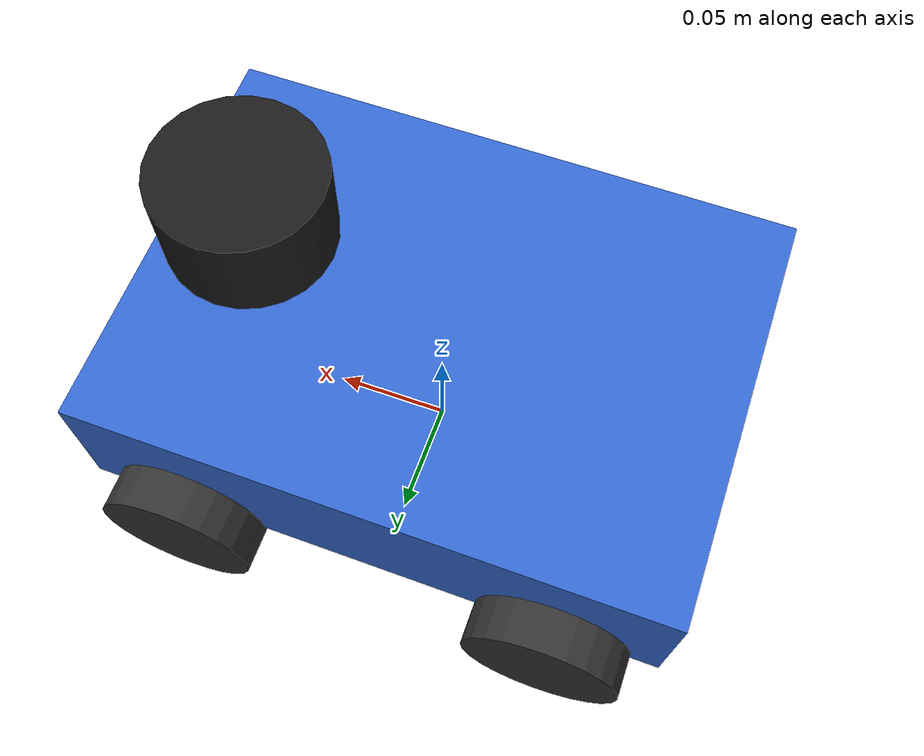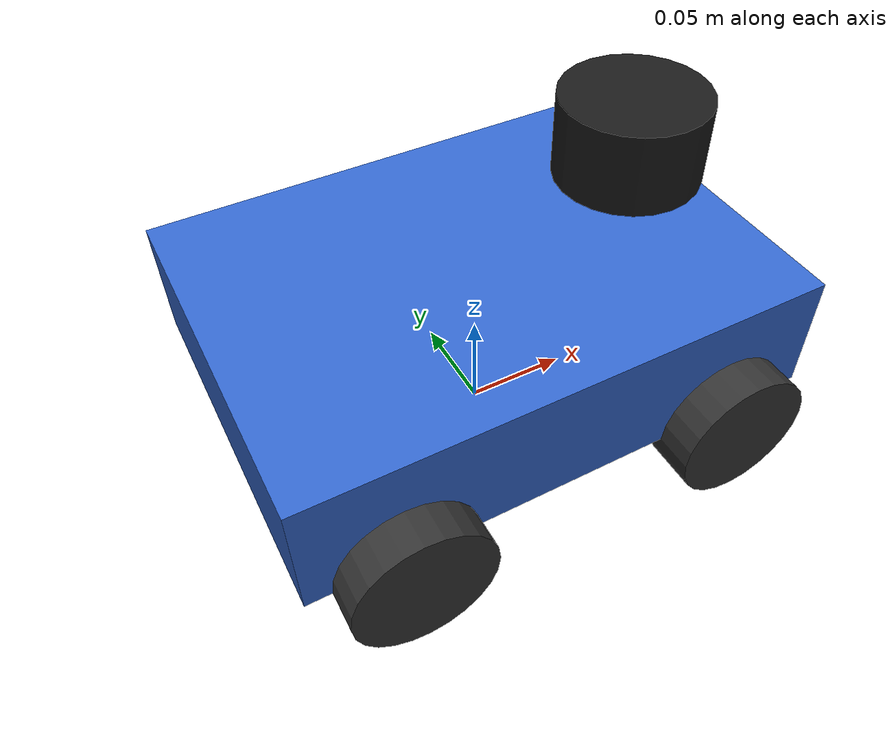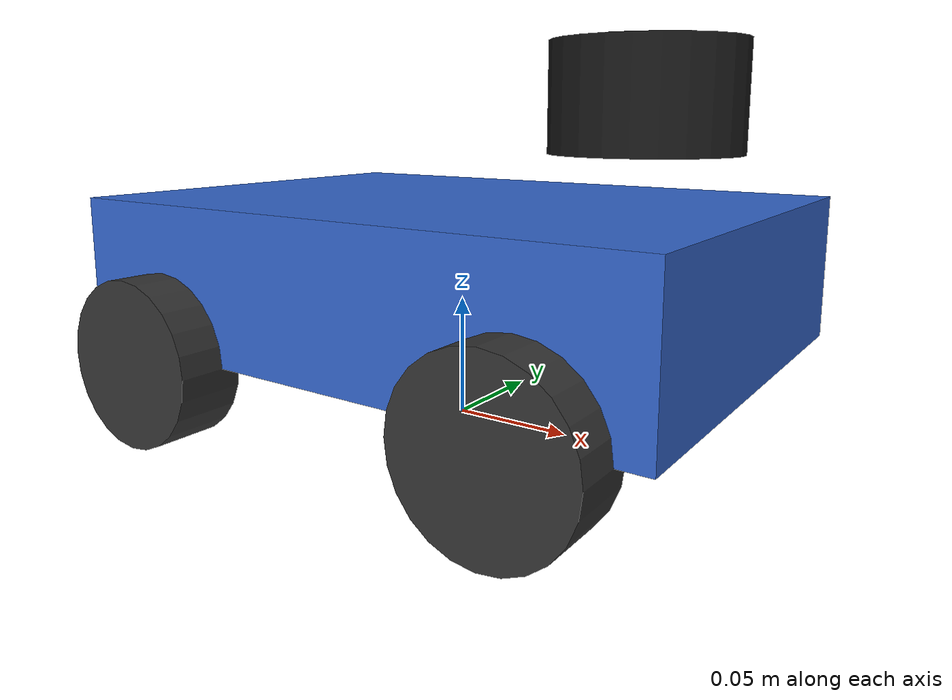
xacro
<?xml version="1.0"?>
<robot xmlns:xacro="http://www.ros.org/wiki/xacro" name="rc_car">

  <!-- ── Properties ── -->
  <xacro:property name="chassis_length" value="0.25"/>
  <xacro:property name="chassis_width"  value="0.18"/>
  <xacro:property name="chassis_height" value="0.06"/>
  <xacro:property name="wheel_radius"   value="0.033"/>
  <xacro:property name="wheel_width"    value="0.026"/>
  <xacro:property name="wheel_offset_x" value="0.08"/>
  <xacro:property name="wheel_offset_y" value="0.095"/>

  <!-- ── Base footprint (ground plane) ── -->
  <link name="base_footprint"/>

  <!-- ── Chassis ── -->
  <link name="base_link">
    <visual>
      <geometry>
        <box size="${chassis_length} ${chassis_width} ${chassis_height}"/>
      </geometry>
      <material name="blue">
        <color rgba="0.2 0.4 0.8 1.0"/>
      </material>
    </visual>
    <collision>
      <geometry>
        <box size="${chassis_length} ${chassis_width} ${chassis_height}"/>
      </geometry>
    </collision>
    <inertial>
      <mass value="1.5"/>
      <inertia ixx="0.005" ixy="0" ixz="0" iyy="0.008" iyz="0" izz="0.01"/>
    </inertial>
  </link>

  <joint name="base_footprint_joint" type="fixed">
    <parent link="base_footprint"/>
    <child link="base_link"/>
    <origin xyz="0 0 ${wheel_radius + chassis_height/2}" rpy="0 0 0"/>
  </joint>

  <!-- ── Wheel macro ── -->
  <xacro:macro name="wheel" params="name x_offset y_offset">
    <link name="${name}_wheel">
      <visual>
        <geometry>
          <cylinder radius="${wheel_radius}" length="${wheel_width}"/>
        </geometry>
        <material name="dark">
          <color rgba="0.2 0.2 0.2 1.0"/>
        </material>
      </visual>
      <collision>
        <geometry>
          <cylinder radius="${wheel_radius}" length="${wheel_width}"/>
        </geometry>
      </collision>
      <inertial>
        <mass value="0.1"/>
        <inertia ixx="0.0001" ixy="0" ixz="0" iyy="0.0001" iyz="0" izz="0.0001"/>
      </inertial>
    </link>

    <joint name="${name}_wheel_joint" type="continuous">
      <parent link="base_link"/>
      <child link="${name}_wheel"/>
      <origin xyz="${x_offset} ${y_offset} ${-chassis_height/2}"
              rpy="${-pi/2} 0 0"/>
      <axis xyz="0 0 1"/>
    </joint>
  </xacro:macro>

  <!-- ── 4 Wheels ── -->
  <xacro:wheel name="front_left"   x_offset="${wheel_offset_x}"  y_offset="${wheel_offset_y}"/>
  <xacro:wheel name="front_right"  x_offset="${wheel_offset_x}"  y_offset="${-wheel_offset_y}"/>
  <xacro:wheel name="rear_left"    x_offset="${-wheel_offset_x}" y_offset="${wheel_offset_y}"/>
  <xacro:wheel name="rear_right"   x_offset="${-wheel_offset_x}" y_offset="${-wheel_offset_y}"/>

  <!-- ── IMU link ── -->
  <link name="imu_link"/>
  <joint name="imu_joint" type="fixed">
    <parent link="base_link"/>
    <child link="imu_link"/>
    <origin xyz="0 0 ${chassis_height/2}" rpy="0 0 0"/>
  </joint>

  <!-- ── LiDAR link ── -->
  <link name="laser_frame">
    <visual>
      <geometry>
        <cylinder radius="0.035" length="0.04"/>
      </geometry>
      <material name="black">
        <color rgba="0.1 0.1 0.1 1.0"/>
      </material>
    </visual>
  </link>
  <joint name="lidar_joint" type="fixed">
    <parent link="base_link"/>
    <child link="laser_frame"/>
    <origin xyz="0.08 0 ${chassis_height/2 + 0.04}" rpy="0 0 0"/>
  </joint>

</robot>
